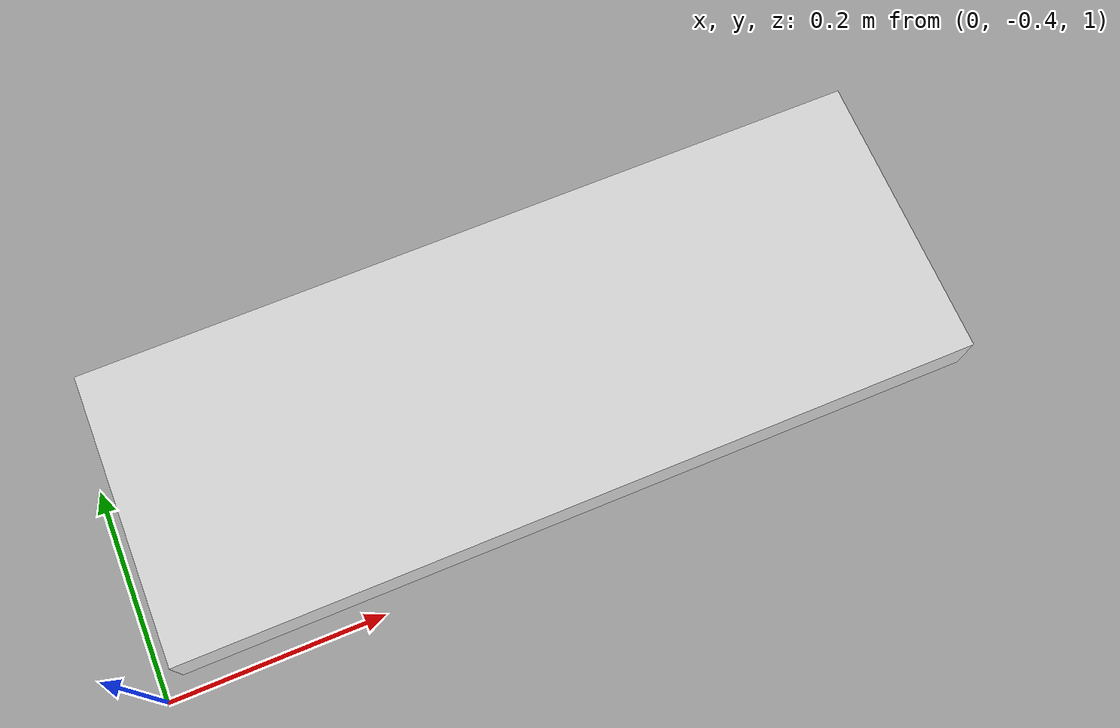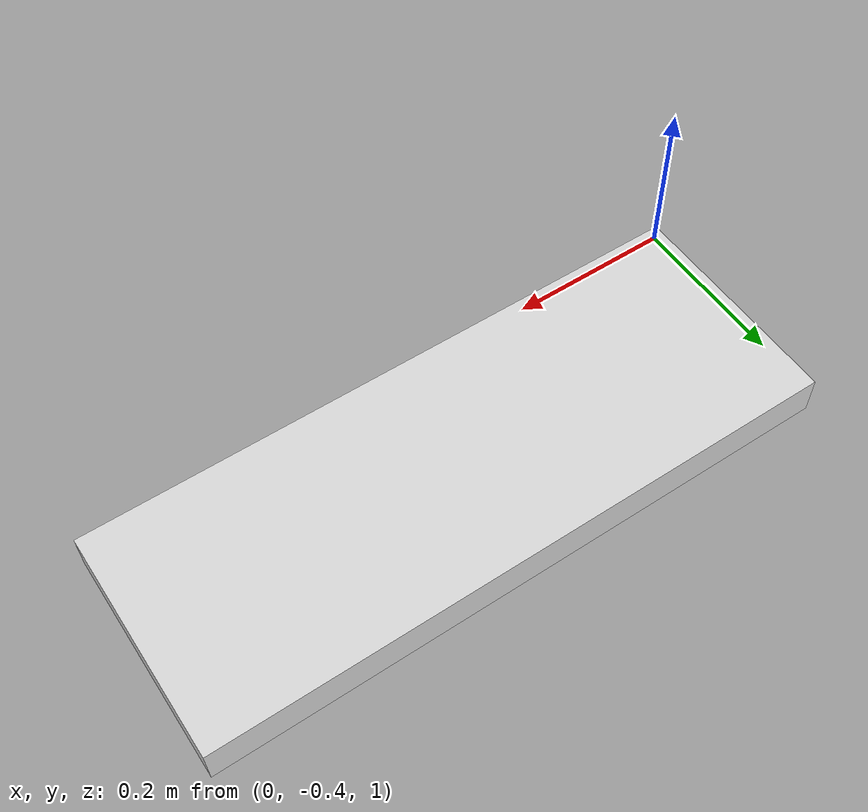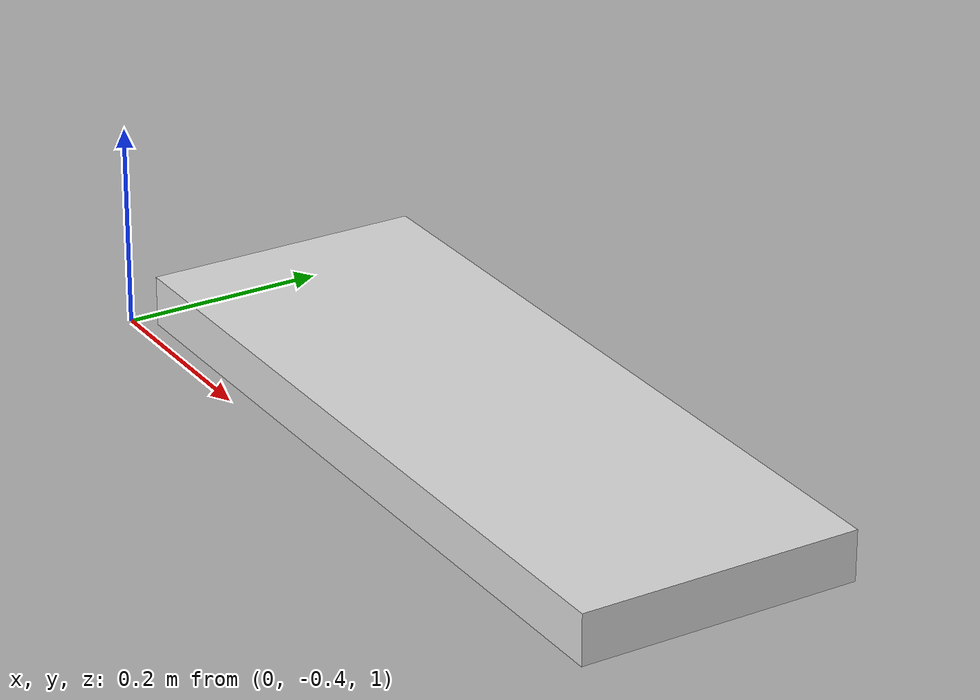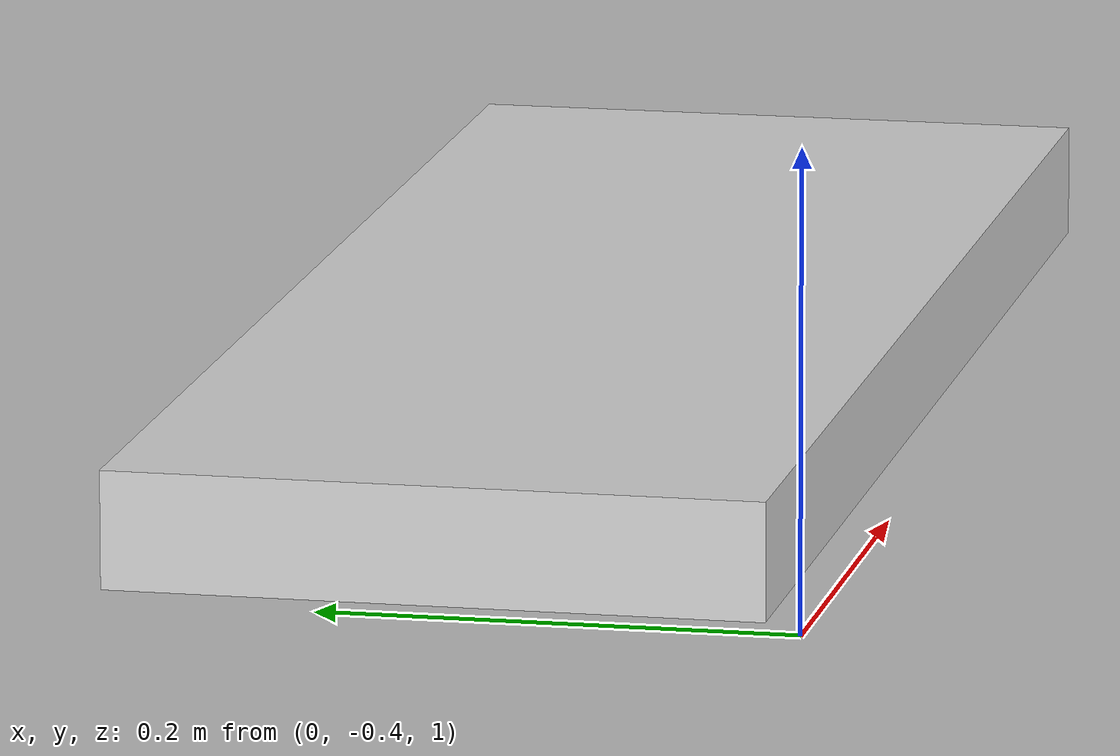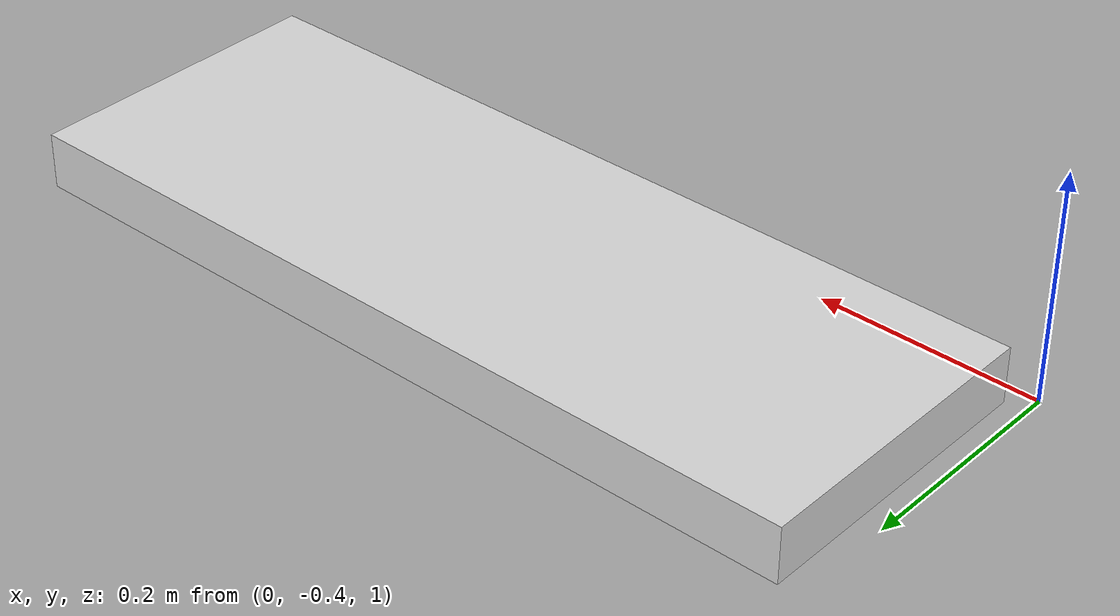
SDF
<?xml version="1.0" ?>
<!-- tmp sdf file generated from LISDF -->
<sdf version="1.9">
  <world name="tmp_world">

<model name="sink_counter_left">
  <static>True</static>
  <pose>0.3970000147819519 -0.24400000274181366 1.024999976158142 0.0 -0.0 0.0</pose>
  <link name="box">

    <inertial>
      <mass>0</mass>
      <pose>0.0 0.0 0.0 0.0 -0.0 0.0</pose>
      <inertia>
        <ixx>0</ixx>
        <ixy>0</ixy>
        <ixz>0</ixz>
        <iyy>0</iyy>
        <iyz>0</iyz>
        <izz>0</izz>
      </inertia>
    </inertial>
    <collision name="box_collision">>
      <pose>0.0 0.0 0.0 0.0 -0.0 0.0</pose>
      <geometry>
        <box>
          <size>0.7559999823570251 0.2759999930858612 0.05000000074505806</size>
        </box>
      </geometry>

    </collision>
    <visual name="box_visual">
      <pose>0.0 0.0 0.0 0.0 -0.0 0.0</pose>
      <geometry>
        <box>
          <size>0.7559999823570251 0.2759999930858612 0.05000000074505806</size>
        </box>
      </geometry>
      <material>
        <ambient>1.0 1.0 1.0 1.0</ambient>
        <diffuse>0.8500000238418579 0.8500000238418579 0.8500000238418579 1.0</diffuse>
        <specular>0.0 0.0 0.0 1.0</specular>
        <emissive>0.0 0.0 0.0 1.0</emissive>
      </material>
      <cast_shadows>True</cast_shadows>
    </visual>
    <self_collide>True</self_collide>
  </link>

</model>

  </world>
</sdf>
